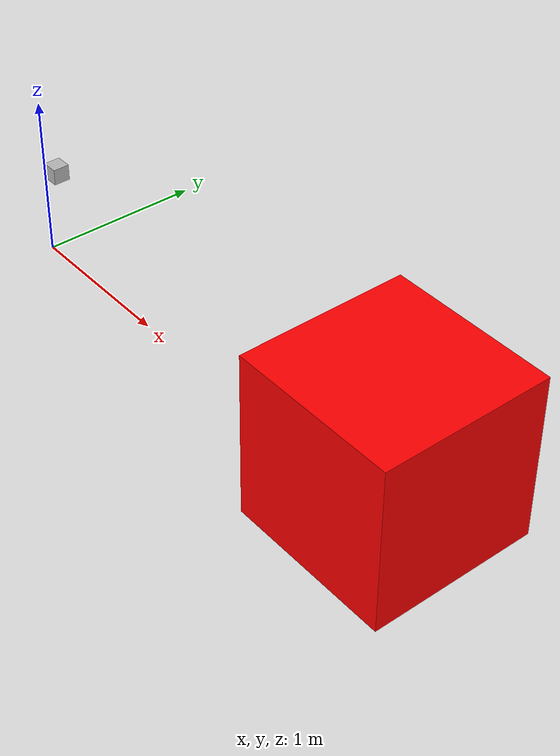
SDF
<?xml version="1.0" ?>
<!--
  Note: For now, this file must be loaded from ign-gazebo's root folder so the
  mesh's relative path is correct.
-->
<sdf version="1.6">
  <world name="depth_camera_sensor">
    <physics name="1ms" type="ode">
      <max_step_size>0.001</max_step_size>
      <real_time_factor>1.0</real_time_factor>
    </physics>
    <plugin
      filename="libignition-gazebo-physics-system.so"
      name="ignition::gazebo::systems::Physics">
    </plugin>
    <plugin
      filename="libignition-gazebo-sensors-system.so"
      name="ignition::gazebo::systems::Sensors">
      <render_engine>ogre2</render_engine>
    </plugin>

    <light type="directional" name="sun">
      <cast_shadows>true</cast_shadows>
      <pose>0 0 10 0 0 0</pose>
      <diffuse>0.8 0.8 0.8 1</diffuse>
      <specular>0.2 0.2 0.2 1</specular>
      <attenuation>
        <range>1000</range>
        <constant>0.9</constant>
        <linear>0.01</linear>
        <quadratic>0.001</quadratic>
      </attenuation>
      <direction>-0.5 0.1 -0.9</direction>
    </light>

    <model name="box">
      <static>true</static>
      <pose>3 0 0.5 0 0 0</pose>
      <link name="box_link">
        <inertial>
          <inertia>
            <ixx>1</ixx>
            <ixy>0</ixy>
            <ixz>0</ixz>
            <iyy>1</iyy>
            <iyz>0</iyz>
            <izz>1</izz>
          </inertia>
          <mass>1.0</mass>
        </inertial>
        <collision name="box_collision">
          <geometry>
            <box>
              <size>1 1 1</size>
            </box>
          </geometry>
        </collision>

        <visual name="box_visual">
          <geometry>
            <box>
              <size>1 1 1</size>
            </box>
          </geometry>
          <material>
            <ambient>1 0 0 1</ambient>
            <diffuse>1 0 0 1</diffuse>
            <specular>1 0 0 1</specular>
          </material>
        </visual>
      </link>
    </model>

    <model name="depth_camera">
      <static>true</static>
      <pose>0 0 0.5 0 0.0 0</pose>
      <link name="depth_camera_link">
        <pose>0.05 0.05 0.05 0 0 0</pose>
        <inertial>
          <mass>0.1</mass>
          <inertia>
            <ixx>0.000166667</ixx>
            <iyy>0.000166667</iyy>
            <izz>0.000166667</izz>
          </inertia>
        </inertial>
        <collision name="collision">
          <geometry>
            <box>
              <size>0.1 0.1 0.1</size>
            </box>
          </geometry>
        </collision>
        <visual name="visual">
          <geometry>
            <box>
              <size>0.1 0.1 0.1</size>
            </box>
          </geometry>
        </visual>
        <sensor name="depth_camera" type="depth_camera">
          <update_rate>10</update_rate>
          <topic>depth_camera</topic>
          <camera>
            <horizontal_fov>1.05</horizontal_fov>
            <image>
              <width>256</width>
              <height>256</height>
              <format>R_FLOAT32</format>
            </image>
            <clip>
              <near>0.1</near>
              <far>10.0</far>
            </clip>
          </camera>
          </sensor>
      </link>
    </model>
  </world>
</sdf>
